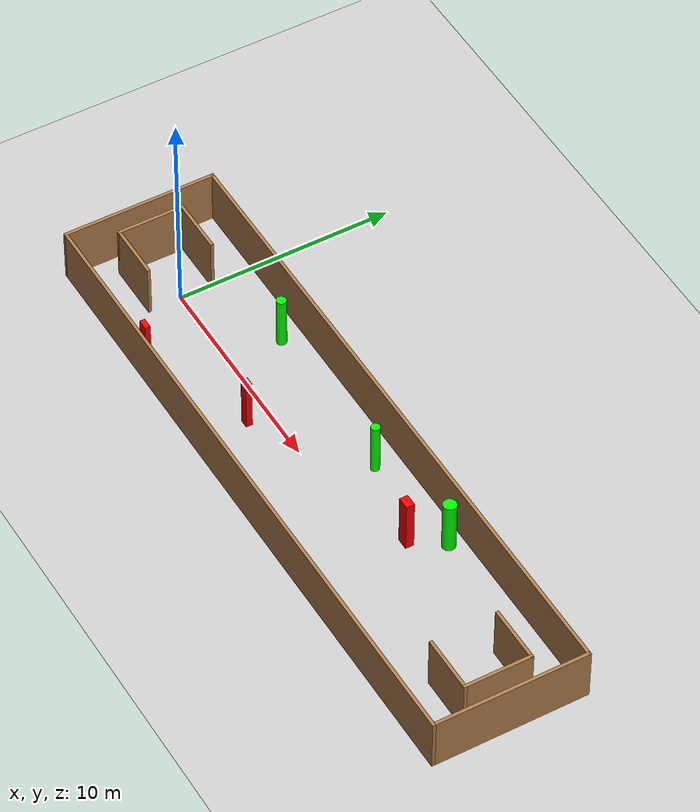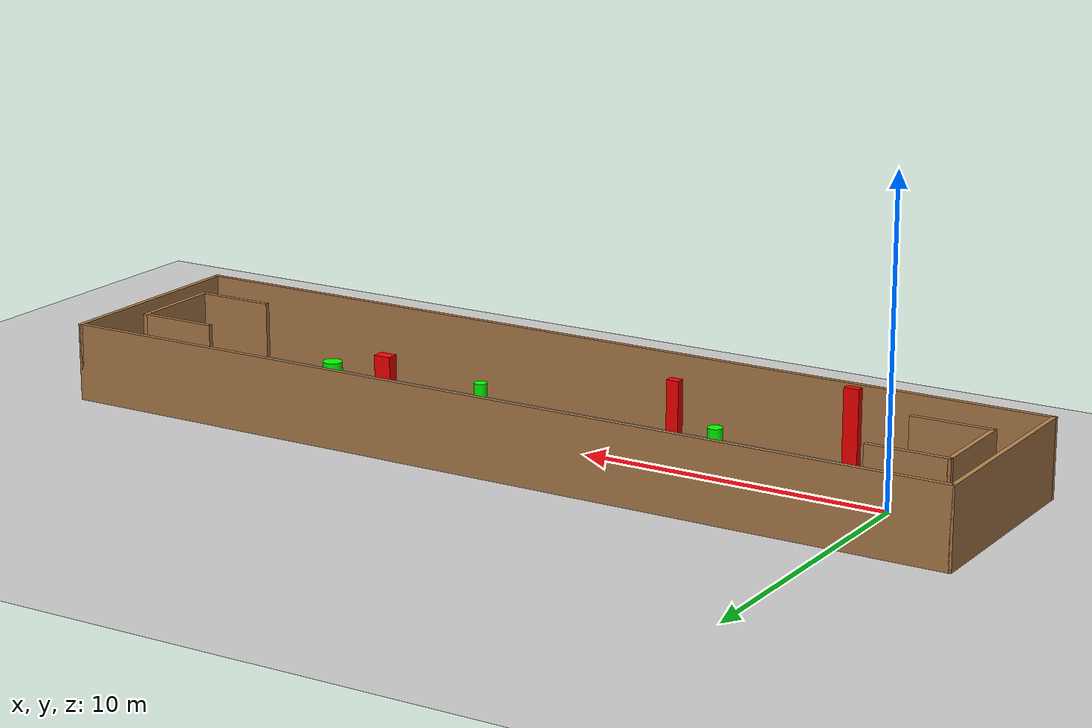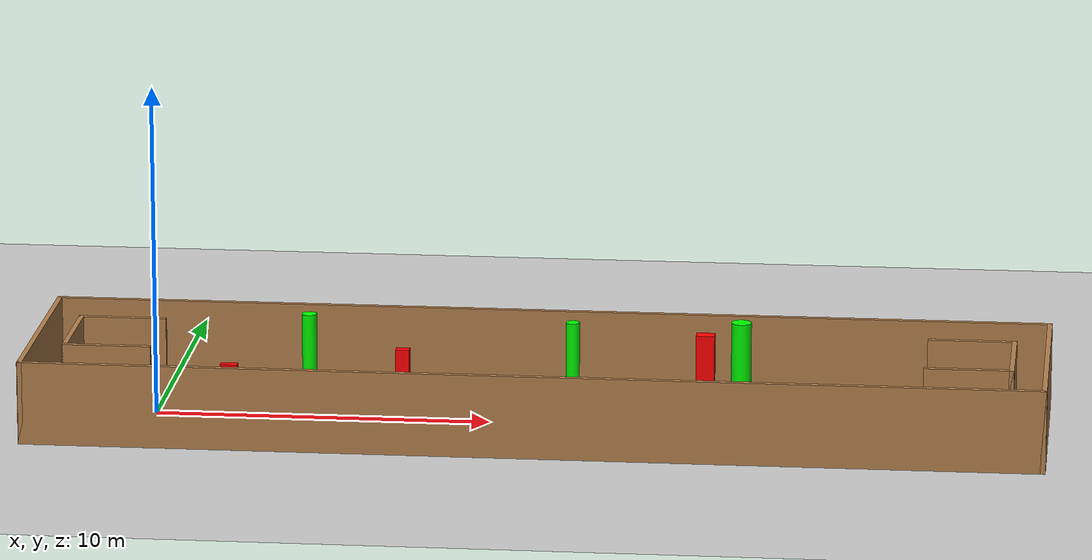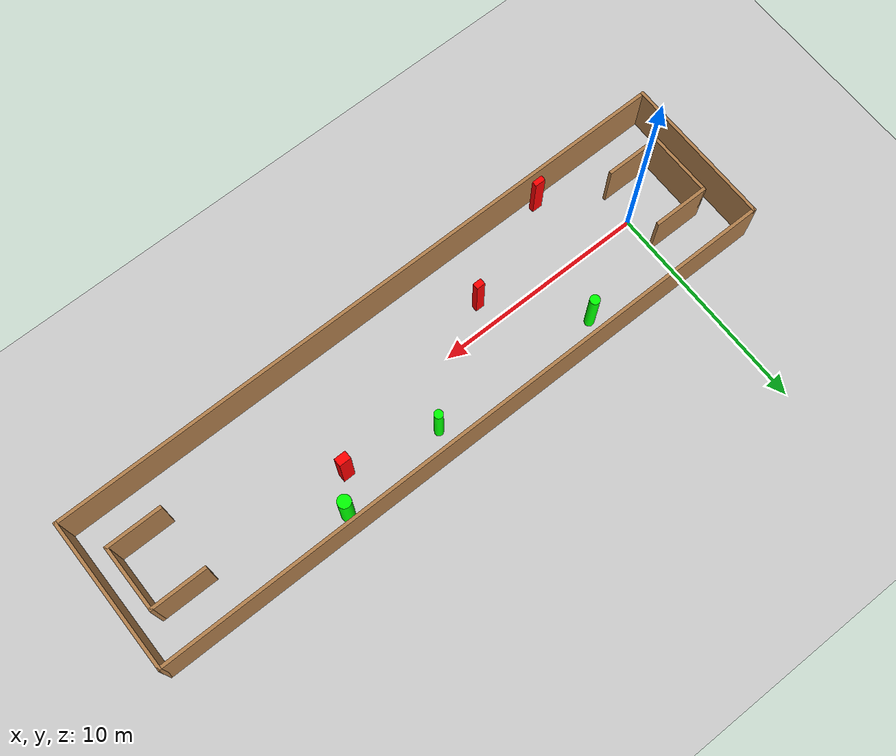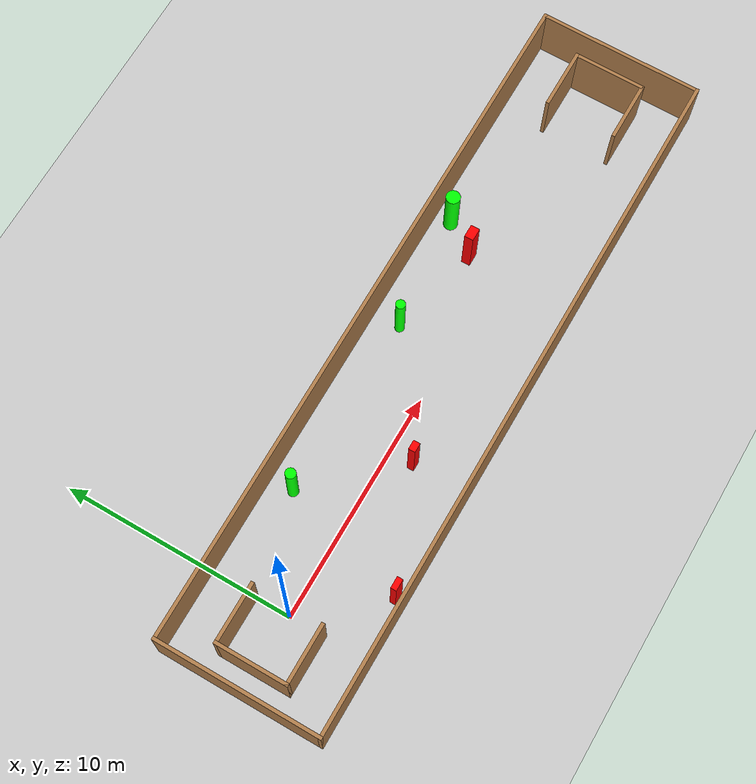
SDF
<sdf version="1.7">
 <world name="default">
  <light name="sun" type="directional">
   <pose>0 0 10 0 -0 0</pose>
   <diffuse>0.8 0.8 0.8 1</diffuse>
   <specular>0.2 0.2 0.2 1</specular>
   <attenuation>
    <range>1000</range>
    <constant>0.9</constant>
    <linear>0.01</linear>
    <quadratic>0.001</quadratic>
   </attenuation>
   <direction>-0.5 0.1 -0.9</direction>
   <spot><inner_angle>0</inner_angle><outer_angle>0</outer_angle><falloff>0</falloff></spot>
  </light>
  <model name="ground_plane">
   <static>1</static>
   <link name="link">
    <collision name="collision">
     <geometry><plane><normal>0 0 1</normal><size>100 100</size></plane></geometry>
     <surface>
      <contact><collide_bitmask>65535</collide_bitmask></contact>
      <friction><ode><mu>100</mu><mu2>50</mu2></ode></friction>
     </surface>
    </collision>
    <visual name="visual">
     <cast_shadows>0</cast_shadows>
     <geometry><plane><normal>0 0 1</normal><size>100 100</size></plane></geometry>
     <material>
      <script><uri>file://media/materials/scripts/gazebo.material</uri><name>Gazebo/Grey</name></script>
     </material>
    </visual>
   </link>
  </model>
  <gravity>0 0 -9.8</gravity>
  <magnetic_field>6e-06 2.3e-05 -4.2e-05</magnetic_field>
  <atmosphere type="adiabatic"/>
  <physics type="ode">
   <max_step_size>0.001</max_step_size>
   <real_time_factor>1</real_time_factor>
   <real_time_update_rate>1000</real_time_update_rate>
  </physics>
  <scene><ambient>0.4 0.4 0.4 1</ambient><background>0.7 0.7 0.7 1</background><shadows>1</shadows></scene>
  <spherical_coordinates>
   <surface_model>EARTH_WGS84</surface_model>
   <latitude_deg>0</latitude_deg>
   <longitude_deg>0</longitude_deg>
   <elevation>0</elevation>
   <heading_deg>0</heading_deg>
  </spherical_coordinates>
  <model name="my_base_walls">
   <link name="Wall_0">
    <collision name="Wall_0_Collision">
     <geometry><box><size>7.15 0.15 2.5</size></box></geometry>
     <pose>0 0 1.25 0 -0 0</pose>
    </collision>
    <visual name="Wall_0_Visual">
     <pose>0 0 1.25 0 -0 0</pose>
     <geometry><box><size>7.15 0.15 2.5</size></box></geometry>
     <material>
      <script><uri>file://media/materials/scripts/gazebo.material</uri><name>Gazebo/Wood</name></script>
      <ambient>1 1 1 1</ambient>
     </material>
     <meta><layer>0</layer></meta>
    </visual>
    <pose>-15 0 0 0 -0 1.5708</pose>
   </link>
   <link name="Wall_10">
    <collision name="Wall_10_Collision">
     <geometry><box><size>2.65 0.15 2.5</size></box></geometry>
     <pose>0 0 1.25 0 -0 0</pose>
    </collision>
    <visual name="Wall_10_Visual">
     <pose>0 0 1.25 0 -0 0</pose>
     <geometry><box><size>2.65 0.15 2.5</size></box></geometry>
     <material>
      <script><uri>file://media/materials/scripts/gazebo.material</uri><name>Gazebo/Wood</name></script>
      <ambient>1 1 1 1</ambient>
     </material>
     <meta><layer>0</layer></meta>
    </visual>
    <pose>-12.75 -1.5 0 0 -0 0</pose>
   </link>
   <link name="Wall_12">
    <collision name="Wall_12_Collision">
     <geometry><box><size>2.65 0.15 2.5</size></box></geometry>
     <pose>0 0 1.25 0 -0 0</pose>
    </collision>
    <visual name="Wall_12_Visual">
     <pose>0 0 1.25 0 -0 0</pose>
     <geometry><box><size>2.65 0.15 2.5</size></box></geometry>
     <material>
      <script><uri>file://media/materials/scripts/gazebo.material</uri><name>Gazebo/Wood</name></script>
      <ambient>1 1 1 1</ambient>
     </material>
     <meta><layer>0</layer></meta>
    </visual>
    <pose>-12.75 1.5 0 0 -0 0</pose>
   </link>
   <link name="Wall_14">
    <collision name="Wall_14_Collision">
     <geometry><box><size>3.15 0.15 2.5</size></box></geometry>
     <pose>0 0 1.25 0 -0 0</pose>
    </collision>
    <visual name="Wall_14_Visual">
     <pose>0 0 1.25 0 -0 0</pose>
     <geometry><box><size>3.15 0.15 2.5</size></box></geometry>
     <material>
      <script><uri>file://media/materials/scripts/gazebo.material</uri><name>Gazebo/Wood</name></script>
      <ambient>1 1 1 1</ambient>
     </material>
     <meta><layer>0</layer></meta>
    </visual>
    <pose>14 0 0 0 -0 -1.5708</pose>
   </link>
   <link name="Wall_15">
    <collision name="Wall_15_Collision">
     <geometry><box><size>2.65 0.15 2.5</size></box></geometry>
     <pose>0 0 1.25 0 -0 0</pose>
    </collision>
    <visual name="Wall_15_Visual">
     <pose>0 0 1.25 0 -0 0</pose>
     <geometry><box><size>2.65 0.15 2.5</size></box></geometry>
     <material>
      <script><uri>file://media/materials/scripts/gazebo.material</uri><name>Gazebo/Wood</name></script>
      <ambient>1 1 1 1</ambient>
     </material>
     <meta><layer>0</layer></meta>
    </visual>
    <pose>12.75 -1.5 0 0 -0 3.14159</pose>
   </link>
   <link name="Wall_17">
    <collision name="Wall_17_Collision">
     <geometry><box><size>2.65 0.15 2.5</size></box></geometry>
     <pose>0 0 1.25 0 -0 0</pose>
    </collision>
    <visual name="Wall_17_Visual">
     <pose>0 0 1.25 0 -0 0</pose>
     <geometry><box><size>2.65 0.15 2.5</size></box></geometry>
     <material>
      <script><uri>file://media/materials/scripts/gazebo.material</uri><name>Gazebo/Wood</name></script>
      <ambient>1 1 1 1</ambient>
     </material>
     <meta><layer>0</layer></meta>
    </visual>
    <pose>12.75 1.5 0 0 -0 3.14159</pose>
   </link>
   <link name="Wall_2">
    <collision name="Wall_2_Collision">
     <geometry><box><size>30.15 0.15 2.5</size></box></geometry>
     <pose>0 0 1.25 0 -0 0</pose>
    </collision>
    <visual name="Wall_2_Visual">
     <pose>0 0 1.25 0 -0 0</pose>
     <geometry><box><size>30.15 0.15 2.5</size></box></geometry>
     <material>
      <script><uri>file://media/materials/scripts/gazebo.material</uri><name>Gazebo/Wood</name></script>
      <ambient>1 1 1 1</ambient>
     </material>
     <meta><layer>0</layer></meta>
    </visual>
    <pose>-0 -3.5 0 0 -0 0</pose>
   </link>
   <link name="Wall_4">
    <collision name="Wall_4_Collision">
     <geometry><box><size>30.15 0.15 2.5</size></box></geometry>
     <pose>0 0 1.25 0 -0 0</pose>
    </collision>
    <visual name="Wall_4_Visual">
     <pose>0 0 1.25 0 -0 0</pose>
     <geometry><box><size>30.15 0.15 2.5</size></box></geometry>
     <material>
      <script><uri>file://media/materials/scripts/gazebo.material</uri><name>Gazebo/Wood</name></script>
      <ambient>1 1 1 1</ambient>
     </material>
     <meta><layer>0</layer></meta>
    </visual>
    <pose>-0 3.5 0 0 -0 0</pose>
   </link>
   <link name="Wall_6">
    <collision name="Wall_6_Collision">
     <geometry><box><size>7.15 0.15 2.5</size></box></geometry>
     <pose>0 0 1.25 0 -0 0</pose>
    </collision>
    <visual name="Wall_6_Visual">
     <pose>0 0 1.25 0 -0 0</pose>
     <geometry><box><size>7.15 0.15 2.5</size></box></geometry>
     <material>
      <script><uri>file://media/materials/scripts/gazebo.material</uri><name>Gazebo/Wood</name></script>
      <ambient>1 1 1 1</ambient>
     </material>
     <meta><layer>0</layer></meta>
    </visual>
    <pose>15 0 0 0 -0 -1.5708</pose>
   </link>
   <link name="Wall_9">
    <collision name="Wall_9_Collision">
     <geometry><box><size>3.15 0.15 2.5</size></box></geometry>
     <pose>0 0 1.25 0 -0 0</pose>
    </collision>
    <visual name="Wall_9_Visual">
     <pose>0 0 1.25 0 -0 0</pose>
     <geometry><box><size>3.15 0.15 2.5</size></box></geometry>
     <material>
      <script><uri>file://media/materials/scripts/gazebo.material</uri><name>Gazebo/Wood</name></script>
      <ambient>1 1 1 1</ambient>
     </material>
     <meta><layer>0</layer></meta>
    </visual>
    <pose>-14 0 0 0 -0 -1.5708</pose>
   </link>
   <static>1</static>
   <pose>11.5 0 0 0 -0 0</pose>
  </model>
  <model name="cylinder1">
   <static>1</static>
   <link name="link">
    <inertial>
     <mass>1</mass>
     <inertia><ixx>0.5</ixx><ixy>0</ixy><ixz>0</ixz><iyy>0.5</iyy><iyz>0</iyz><izz>1</izz></inertia>
    </inertial>
    <collision name="collision">
     <geometry><cylinder><radius>0.20249979734797574</radius><length>2.5</length></cylinder></geometry>
    </collision>
    <visual name="visual">
     <geometry><cylinder><radius>0.20249979734797574</radius><length>2.5</length></cylinder></geometry>
     <material>
      <ambient>0 1 0 1</ambient>
      <diffuse>0 1 0 1</diffuse>
      <specular>0.1 0.1 0.1 1</specular>
      <emissive>0 0 0 0</emissive>
     </material>
    </visual>
   </link>
   <pose>12.268009920012757 2.269159662050499 1.25 0 0 0</pose>
  </model>
  <model name="cylinder2">
   <static>1</static>
   <link name="link">
    <inertial>
     <mass>1</mass>
     <inertia><ixx>0.5</ixx><ixy>0</ixy><ixz>0</ixz><iyy>0.5</iyy><iyz>0</iyz><izz>1</izz></inertia>
    </inertial>
    <collision name="collision">
     <geometry><cylinder><radius>0.2249003396305558</radius><length>2.5</length></cylinder></geometry>
    </collision>
    <visual name="visual">
     <geometry><cylinder><radius>0.2249003396305558</radius><length>2.5</length></cylinder></geometry>
     <material>
      <ambient>0 1 0 1</ambient>
      <diffuse>0 1 0 1</diffuse>
      <specular>0.1 0.1 0.1 1</specular>
      <emissive>0 0 0 0</emissive>
     </material>
    </visual>
   </link>
   <pose>4.28427145721373 2.4380503187435414 1.25 0 0 0</pose>
  </model>
  <model name="cylinder3">
   <static>1</static>
   <link name="link">
    <inertial>
     <mass>1</mass>
     <inertia><ixx>0.5</ixx><ixy>0</ixy><ixz>0</ixz><iyy>0.5</iyy><iyz>0</iyz><izz>1</izz></inertia>
    </inertial>
    <collision name="collision">
     <geometry><cylinder><radius>0.30022128777657564</radius><length>2.5</length></cylinder></geometry>
    </collision>
    <visual name="visual">
     <geometry><cylinder><radius>0.30022128777657564</radius><length>2.5</length></cylinder></geometry>
     <material>
      <ambient>0 1 0 1</ambient>
      <diffuse>0 1 0 1</diffuse>
      <specular>0.1 0.1 0.1 1</specular>
      <emissive>0 0 0 0</emissive>
     </material>
    </visual>
   </link>
   <pose>17.303716316353427 2.743566021825803 1.25 0 0 0</pose>
  </model>
  <model name="box1">
   <static>1</static>
   <link name="link">
    <inertial>
     <mass>1</mass>
     <inertia><ixx>0.083</ixx><ixy>0</ixy><ixz>0</ixz><iyy>0.083</iyy><iyz>0</iyz><izz>0.083</izz></inertia>
    </inertial>
    <collision name="collision">
     <geometry><box><size>0.5548379030605424 0.37962480743495497 2.5</size></box></geometry>
    </collision>
    <visual name="visual">
     <geometry><box><size>0.5548379030605424 0.37962480743495497 2.5</size></box></geometry>
     <material>
      <ambient>1 0 0 1</ambient>
      <diffuse>1 0 0 1</diffuse>
      <specular>0.1 0.1 0.1 1</specular>
      <emissive>0 0 0 0</emissive>
     </material>
    </visual>
    <sensor name="my_contact" type="contact">
     <contact><collision>box_collision</collision><topic>__default_topic__</topic></contact>
    </sensor>
   </link>
   <pose>16.325745117452076 1.3454558326309147 1.25 0 0 0</pose>
  </model>
  <model name="box2">
   <static>1</static>
   <link name="link">
    <inertial>
     <mass>1</mass>
     <inertia><ixx>0.083</ixx><ixy>0</ixy><ixz>0</ixz><iyy>0.083</iyy><iyz>0</iyz><izz>0.083</izz></inertia>
    </inertial>
    <collision name="collision">
     <geometry><box><size>0.49854150496669963 0.24423312370999478 2.5</size></box></geometry>
    </collision>
    <visual name="visual">
     <geometry><box><size>0.49854150496669963 0.24423312370999478 2.5</size></box></geometry>
     <material>
      <ambient>1 0 0 1</ambient>
      <diffuse>1 0 0 1</diffuse>
      <specular>0.1 0.1 0.1 1</specular>
      <emissive>0 0 0 0</emissive>
     </material>
    </visual>
    <sensor name="my_contact" type="contact">
     <contact><collision>box_collision</collision><topic>__default_topic__</topic></contact>
    </sensor>
   </link>
   <pose>2.653607526561741 -3.0819678521295617 1.25 0 0 0</pose>
  </model>
  <model name="box3">
   <static>1</static>
   <link name="link">
    <inertial>
     <mass>1</mass>
     <inertia><ixx>0.083</ixx><ixy>0</ixy><ixz>0</ixz><iyy>0.083</iyy><iyz>0</iyz><izz>0.083</izz></inertia>
    </inertial>
    <collision name="collision">
     <geometry><box><size>0.4028117964844484 0.2892574503646731 2.5</size></box></geometry>
    </collision>
    <visual name="visual">
     <geometry><box><size>0.4028117964844484 0.2892574503646731 2.5</size></box></geometry>
     <material>
      <ambient>1 0 0 1</ambient>
      <diffuse>1 0 0 1</diffuse>
      <specular>0.1 0.1 0.1 1</specular>
      <emissive>0 0 0 0</emissive>
     </material>
    </visual>
    <sensor name="my_contact" type="contact">
     <contact><collision>box_collision</collision><topic>__default_topic__</topic></contact>
    </sensor>
   </link>
   <pose>7.533260589957855 -1.0389039524166392 1.25 0 0 0</pose>
  </model>
 </world>
</sdf>
